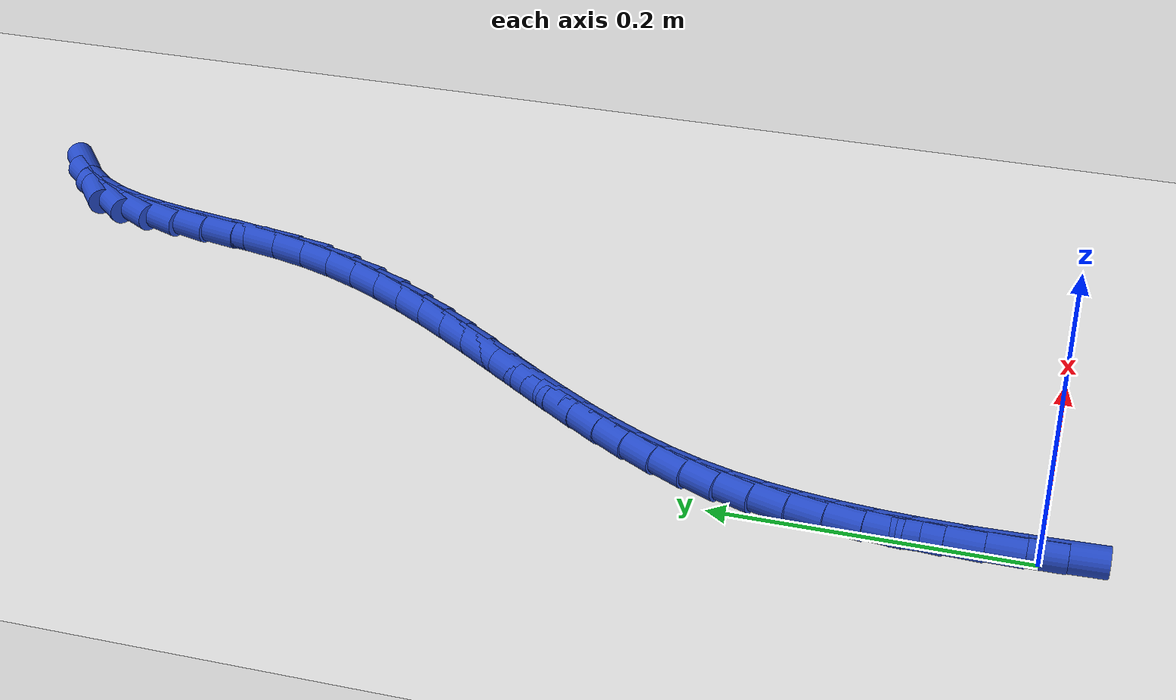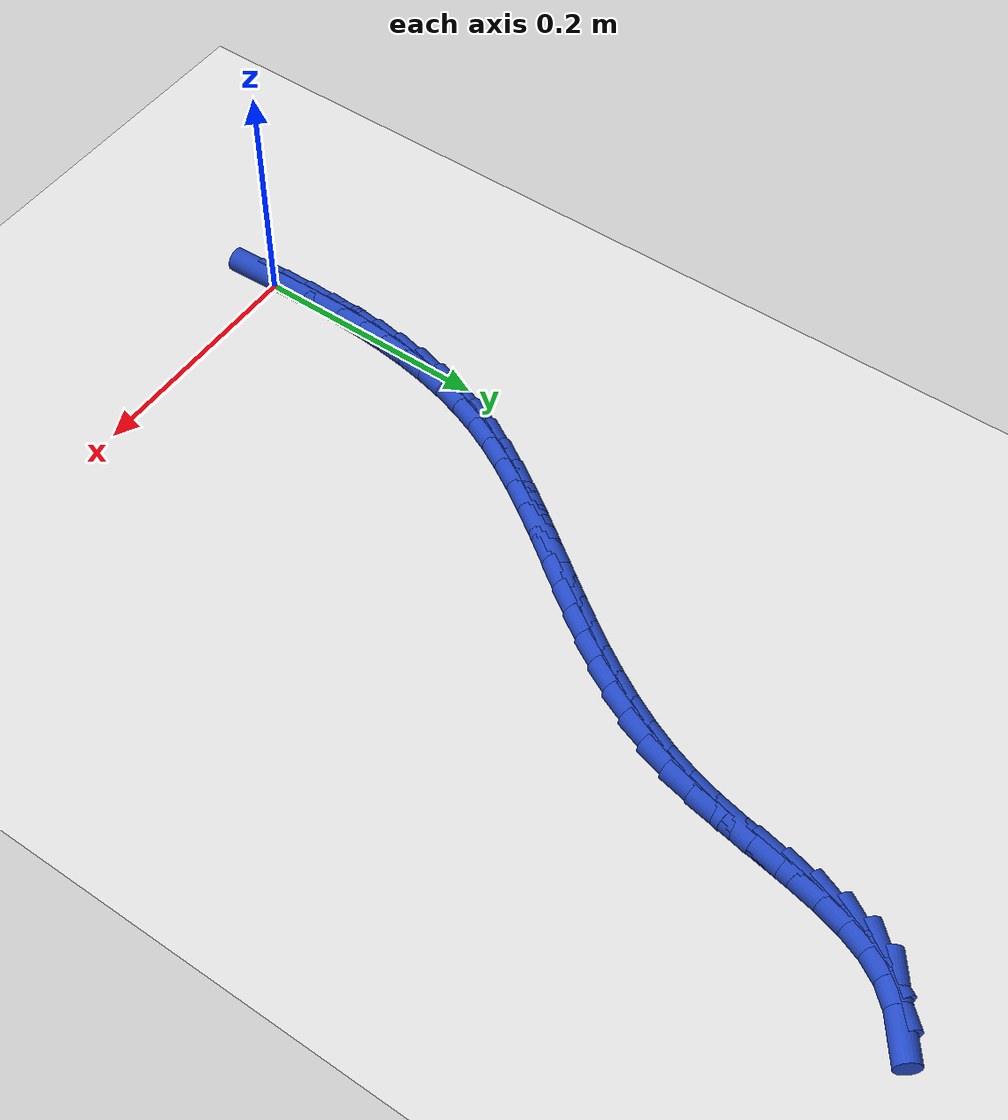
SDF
<sdf version="1.6">
 <world name="default">
  <model name="ground_plane">
   <static>1</static>
   <link name="link">
    <collision name="collision">
     <geometry><plane><normal>0 0 1</normal><size>100 100</size></plane></geometry>
     <surface><friction><ode><mu>100</mu><mu2>50</mu2></ode></friction></surface>
    </collision>
    <visual name="visual">
     <cast_shadows>0</cast_shadows>
     <geometry><plane><normal>0 0 1</normal><size>100 100</size></plane></geometry>
     <material>
      <script><uri>file://media/materials/scripts/gazebo.material</uri><name>Gazebo/WhiteGlow</name></script>
     </material>
    </visual>
   </link>
  </model>
  <model name="line">
   <link name="link_1">
    <pose>-0.0007677014303652256 0.02374301104034909 0.01 0 1.57 -1.5591126122774837</pose>
    <collision name="collision">
     <geometry><cylinder><radius>0.01</radius><length>0.08</length></cylinder></geometry>
    </collision>
    <visual name="visual">
     <material>
      <script><name>Gazebo/Blue</name><uri>file://media/materials/scripts/gazebo.material</uri></script>
     </material>
     <geometry><cylinder><radius>0.01</radius><length>0.08</length></cylinder></geometry>
    </visual>
   </link>
   <link name="link_2">
    <pose>-0.0010465392331661615 0.04760743483264447 0.01 0 1.57 1.5566194134739137</pose>
    <collision name="collision">
     <geometry><cylinder><radius>0.01</radius><length>0.08</length></cylinder></geometry>
    </collision>
    <visual name="visual">
     <material>
      <script><name>Gazebo/Blue</name><uri>file://media/materials/scripts/gazebo.material</uri></script>
     </material>
     <geometry><cylinder><radius>0.01</radius><length>0.08</length></cylinder></geometry>
    </visual>
   </link>
   <link name="link_3">
    <pose>-0.0007078849186716965 0.07149356705283563 0.01 0 1.57 1.5252646155248755</pose>
    <collision name="collision">
     <geometry><cylinder><radius>0.01</radius><length>0.08</length></cylinder></geometry>
    </collision>
    <visual name="visual">
     <material>
      <script><name>Gazebo/Blue</name><uri>file://media/materials/scripts/gazebo.material</uri></script>
     </material>
     <geometry><cylinder><radius>0.01</radius><length>0.08</length></cylinder></geometry>
    </visual>
   </link>
   <link name="link_4">
    <pose>0.00037689000284926266 0.09530170337687202 0.01 0 1.57 1.4880618823220018</pose>
    <collision name="collision">
     <geometry><cylinder><radius>0.01</radius><length>0.08</length></cylinder></geometry>
    </collision>
    <visual name="visual">
     <material>
      <script><name>Gazebo/Blue</name><uri>file://media/materials/scripts/gazebo.material</uri></script>
     </material>
     <geometry><cylinder><radius>0.01</radius><length>0.08</length></cylinder></geometry>
    </visual>
   </link>
   <link name="link_5">
    <pose>0.002336414021127808 0.11893213948070316 0.01 0 1.57 1.4445962079937473</pose>
    <collision name="collision">
     <geometry><cylinder><radius>0.01</radius><length>0.08</length></cylinder></geometry>
    </collision>
    <visual name="visual">
     <material>
      <script><name>Gazebo/Blue</name><uri>file://media/materials/scripts/gazebo.material</uri></script>
     </material>
     <geometry><cylinder><radius>0.01</radius><length>0.08</length></cylinder></geometry>
    </visual>
   </link>
   <link name="link_6">
    <pose>0.005299315625895032 0.1422851710402786 0.01 0 1.57 1.394422207475839</pose>
    <collision name="collision">
     <geometry><cylinder><radius>0.01</radius><length>0.08</length></cylinder></geometry>
    </collision>
    <visual name="visual">
     <material>
      <script><name>Gazebo/Blue</name><uri>file://media/materials/scripts/gazebo.material</uri></script>
     </material>
     <geometry><cylinder><radius>0.01</radius><length>0.08</length></cylinder></geometry>
    </visual>
   </link>
   <link name="link_7">
    <pose>0.009394223306882029 0.16526109373154782 0.01 0 1.57 1.337111553101846</pose>
    <collision name="collision">
     <geometry><cylinder><radius>0.01</radius><length>0.08</length></cylinder></geometry>
    </collision>
    <visual name="visual">
     <material>
      <script><name>Gazebo/Blue</name><uri>file://media/materials/scripts/gazebo.material</uri></script>
     </material>
     <geometry><cylinder><radius>0.01</radius><length>0.08</length></cylinder></geometry>
    </visual>
   </link>
   <link name="link_8">
    <pose>0.014749765553819889 0.18776020323046022 0.01 0 1.57 1.272322714701313</pose>
    <collision name="collision">
     <geometry><cylinder><radius>0.01</radius><length>0.08</length></cylinder></geometry>
    </collision>
    <visual name="visual">
     <material>
      <script><name>Gazebo/Blue</name><uri>file://media/materials/scripts/gazebo.material</uri></script>
     </material>
     <geometry><cylinder><radius>0.01</radius><length>0.08</length></cylinder></geometry>
    </visual>
   </link>
   <link name="link_9">
    <pose>0.0214945708564397 0.20968279521296543 0.01 0 1.57 1.2010960972940572</pose>
    <collision name="collision">
     <geometry><cylinder><radius>0.01</radius><length>0.08</length></cylinder></geometry>
    </collision>
    <visual name="visual">
     <material>
      <script><name>Gazebo/Blue</name><uri>file://media/materials/scripts/gazebo.material</uri></script>
     </material>
     <geometry><cylinder><radius>0.01</radius><length>0.08</length></cylinder></geometry>
    </visual>
   </link>
   <link name="link_10">
    <pose>0.029733590960922738 0.23094377662411106 0.01 0 1.57 1.1340430050891197</pose>
    <collision name="collision">
     <geometry><cylinder><radius>0.01</radius><length>0.08</length></cylinder></geometry>
    </collision>
    <visual name="visual">
     <material>
      <script><name>Gazebo/Blue</name><uri>file://media/materials/scripts/gazebo.material</uri></script>
     </material>
     <geometry><cylinder><radius>0.01</radius><length>0.08</length></cylinder></geometry>
    </visual>
   </link>
   <link name="link_11">
    <pose>0.03936860333262791 0.25158343626666013 0.01 0 1.57 1.0770773024523659</pose>
    <collision name="collision">
     <geometry><cylinder><radius>0.01</radius><length>0.08</length></cylinder></geometry>
    </collision>
    <visual name="visual">
     <material>
      <script><name>Gazebo/Blue</name><uri>file://media/materials/scripts/gazebo.material</uri></script>
     </material>
     <geometry><cylinder><radius>0.01</radius><length>0.08</length></cylinder></geometry>
    </visual>
   </link>
   <link name="link_12">
    <pose>0.05019798939827478 0.2717058701701199 0.01 0 1.57 1.030547085178031</pose>
    <collision name="collision">
     <geometry><cylinder><radius>0.01</radius><length>0.08</length></cylinder></geometry>
    </collision>
    <visual name="visual">
     <material>
      <script><name>Gazebo/Blue</name><uri>file://media/materials/scripts/gazebo.material</uri></script>
     </material>
     <geometry><cylinder><radius>0.01</radius><length>0.08</length></cylinder></geometry>
    </visual>
   </link>
   <link name="link_13">
    <pose>0.06201931173426346 0.2914156796886567 0.01 0 1.57 0.9944334268146502</pose>
    <collision name="collision">
     <geometry><cylinder><radius>0.01</radius><length>0.08</length></cylinder></geometry>
    </collision>
    <visual name="visual">
     <material>
      <script><name>Gazebo/Blue</name><uri>file://media/materials/scripts/gazebo.material</uri></script>
     </material>
     <geometry><cylinder><radius>0.01</radius><length>0.08</length></cylinder></geometry>
    </visual>
   </link>
   <link name="link_14">
    <pose>0.07463013291699404 0.3108174661764372 0.01 0 1.57 0.968544111001394</pose>
    <collision name="collision">
     <geometry><cylinder><radius>0.01</radius><length>0.08</length></cylinder></geometry>
    </collision>
    <visual name="visual">
     <material>
      <script><name>Gazebo/Blue</name><uri>file://media/materials/scripts/gazebo.material</uri></script>
     </material>
     <geometry><cylinder><radius>0.01</radius><length>0.08</length></cylinder></geometry>
    </visual>
   </link>
   <link name="link_15">
    <pose>0.08782801552286672 0.33001583098762793 0.01 0 1.57 0.9526309485638088</pose>
    <collision name="collision">
     <geometry><cylinder><radius>0.01</radius><length>0.08</length></cylinder></geometry>
    </collision>
    <visual name="visual">
     <material>
      <script><name>Gazebo/Blue</name><uri>file://media/materials/scripts/gazebo.material</uri></script>
     </material>
     <geometry><cylinder><radius>0.01</radius><length>0.08</length></cylinder></geometry>
    </visual>
   </link>
   <link name="link_16">
    <pose>0.10141052212828153 0.34911537547639526 0.01 0 1.57 0.9464679651802381</pose>
    <collision name="collision">
     <geometry><cylinder><radius>0.01</radius><length>0.08</length></cylinder></geometry>
    </collision>
    <visual name="visual">
     <material>
      <script><name>Gazebo/Blue</name><uri>file://media/materials/scripts/gazebo.material</uri></script>
     </material>
     <geometry><cylinder><radius>0.01</radius><length>0.08</length></cylinder></geometry>
    </visual>
   </link>
   <link name="link_17">
    <pose>0.11517521530963862 0.36822070099690574 0.01 0 1.57 0.9498945976807526</pose>
    <collision name="collision">
     <geometry><cylinder><radius>0.01</radius><length>0.08</length></cylinder></geometry>
    </collision>
    <visual name="visual">
     <material>
      <script><name>Gazebo/Blue</name><uri>file://media/materials/scripts/gazebo.material</uri></script>
     </material>
     <geometry><cylinder><radius>0.01</radius><length>0.08</length></cylinder></geometry>
    </visual>
   </link>
   <link name="link_18">
    <pose>0.12891965764333815 0.3874364089033259 0.01 0 1.57 0.9628295716358256</pose>
    <collision name="collision">
     <geometry><cylinder><radius>0.01</radius><length>0.08</length></cylinder></geometry>
    </collision>
    <visual name="visual">
     <material>
      <script><name>Gazebo/Blue</name><uri>file://media/materials/scripts/gazebo.material</uri></script>
     </material>
     <geometry><cylinder><radius>0.01</radius><length>0.08</length></cylinder></geometry>
    </visual>
   </link>
   <link name="link_19">
    <pose>0.14244141170578012 0.4068671005498222 0.01 0 1.57 0.9852592882658145</pose>
    <collision name="collision">
     <geometry><cylinder><radius>0.01</radius><length>0.08</length></cylinder></geometry>
    </collision>
    <visual name="visual">
     <material>
      <script><name>Gazebo/Blue</name><uri>file://media/materials/scripts/gazebo.material</uri></script>
     </material>
     <geometry><cylinder><radius>0.01</radius><length>0.08</length></cylinder></geometry>
    </visual>
   </link>
   <link name="link_20">
    <pose>0.15553804007336486 0.42661737729056126 0.01 0 1.57 1.0172018359766788</pose>
    <collision name="collision">
     <geometry><cylinder><radius>0.01</radius><length>0.08</length></cylinder></geometry>
    </collision>
    <visual name="visual">
     <material>
      <script><name>Gazebo/Blue</name><uri>file://media/materials/scripts/gazebo.material</uri></script>
     </material>
     <geometry><cylinder><radius>0.01</radius><length>0.08</length></cylinder></geometry>
    </visual>
   </link>
   <link name="link_21">
    <pose>0.16800710532249227 0.4467918404797094 0.01 0 1.57 1.0586459094893708</pose>
    <collision name="collision">
     <geometry><cylinder><radius>0.01</radius><length>0.08</length></cylinder></geometry>
    </collision>
    <visual name="visual">
     <material>
      <script><name>Gazebo/Blue</name><uri>file://media/materials/scripts/gazebo.material</uri></script>
     </material>
     <geometry><cylinder><radius>0.01</radius><length>0.08</length></cylinder></geometry>
    </visual>
   </link>
   <link name="link_22">
    <pose>0.1796461700295625 0.4674950914714331 0.01 0 1.57 1.1094645334912947</pose>
    <collision name="collision">
     <geometry><cylinder><radius>0.01</radius><length>0.08</length></cylinder></geometry>
    </collision>
    <visual name="visual">
     <material>
      <script><name>Gazebo/Blue</name><uri>file://media/materials/scripts/gazebo.material</uri></script>
     </material>
     <geometry><cylinder><radius>0.01</radius><length>0.08</length></cylinder></geometry>
    </visual>
   </link>
   <link name="link_23">
    <pose>0.19025279677097579 0.488831731619899 0.01 0 1.57 1.1693081653867587</pose>
    <collision name="collision">
     <geometry><cylinder><radius>0.01</radius><length>0.08</length></cylinder></geometry>
    </collision>
    <visual name="visual">
     <material>
      <script><name>Gazebo/Blue</name><uri>file://media/materials/scripts/gazebo.material</uri></script>
     </material>
     <geometry><cylinder><radius>0.01</radius><length>0.08</length></cylinder></geometry>
    </visual>
   </link>
   <link name="link_24">
    <pose>0.19962454812313224 0.5109063622792738 0.01 0 1.57 1.237491480410047</pose>
    <collision name="collision">
     <geometry><cylinder><radius>0.01</radius><length>0.08</length></cylinder></geometry>
    </collision>
    <visual name="visual">
     <material>
      <script><name>Gazebo/Blue</name><uri>file://media/materials/scripts/gazebo.material</uri></script>
     </material>
     <geometry><cylinder><radius>0.01</radius><length>0.08</length></cylinder></geometry>
    </visual>
   </link>
   <link name="link_25">
    <pose>0.2075589866624319 0.5338235848037236 0.01 0 1.57 1.3121350676280372</pose>
    <collision name="collision">
     <geometry><cylinder><radius>0.01</radius><length>0.08</length></cylinder></geometry>
    </collision>
    <visual name="visual">
     <material>
      <script><name>Gazebo/Blue</name><uri>file://media/materials/scripts/gazebo.material</uri></script>
     </material>
     <geometry><cylinder><radius>0.01</radius><length>0.08</length></cylinder></geometry>
    </visual>
   </link>
   <link name="link_26">
    <pose>0.21387014389067138 0.557676305284221 0.01 0 1.57 1.3735472927225385</pose>
    <collision name="collision">
     <geometry><cylinder><radius>0.01</radius><length>0.08</length></cylinder></geometry>
    </collision>
    <visual name="visual">
     <material>
      <script><name>Gazebo/Blue</name><uri>file://media/materials/scripts/gazebo.material</uri></script>
     </material>
     <geometry><cylinder><radius>0.01</radius><length>0.08</length></cylinder></geometry>
    </visual>
   </link>
   <link name="link_27">
    <pose>0.21878409946325075 0.582264817422709 0.01 0 1.57 1.4041628358587832</pose>
    <collision name="collision">
     <geometry><cylinder><radius>0.01</radius><length>0.08</length></cylinder></geometry>
    </collision>
    <visual name="visual">
     <material>
      <script><name>Gazebo/Blue</name><uri>file://media/materials/scripts/gazebo.material</uri></script>
     </material>
     <geometry><cylinder><radius>0.01</radius><length>0.08</length></cylinder></geometry>
    </visual>
   </link>
   <link name="link_28">
    <pose>0.222958354186704 0.6070830449675048 0.01 0 1.57 1.4046760108720817</pose>
    <collision name="collision">
     <geometry><cylinder><radius>0.01</radius><length>0.08</length></cylinder></geometry>
    </collision>
    <visual name="visual">
     <material>
      <script><name>Gazebo/Blue</name><uri>file://media/materials/scripts/gazebo.material</uri></script>
     </material>
     <geometry><cylinder><radius>0.01</radius><length>0.08</length></cylinder></geometry>
    </visual>
   </link>
   <link name="link_29">
    <pose>0.22707075495657741 0.6316104630699318 0.01 0 1.57 1.3740018208485782</pose>
    <collision name="collision">
     <geometry><cylinder><radius>0.01</radius><length>0.08</length></cylinder></geometry>
    </collision>
    <visual name="visual">
     <material>
      <script><name>Gazebo/Blue</name><uri>file://media/materials/scripts/gazebo.material</uri></script>
     </material>
     <geometry><cylinder><radius>0.01</radius><length>0.08</length></cylinder></geometry>
    </visual>
   </link>
   <link name="link_30">
    <pose>0.23179914866841714 0.6553265468813139 0.01 0 1.57 1.3079802400317275</pose>
    <collision name="collision">
     <geometry><cylinder><radius>0.01</radius><length>0.08</length></cylinder></geometry>
    </collision>
    <visual name="visual">
     <material>
      <script><name>Gazebo/Blue</name><uri>file://media/materials/scripts/gazebo.material</uri></script>
     </material>
     <geometry><cylinder><radius>0.01</radius><length>0.08</length></cylinder></geometry>
    </visual>
   </link>
   <link name="link_31">
    <pose>0.23782138221776936 0.6777107715529743 0.01 0 1.57 1.1995109880548842</pose>
    <collision name="collision">
     <geometry><cylinder><radius>0.01</radius><length>0.08</length></cylinder></geometry>
    </collision>
    <visual name="visual">
     <material>
      <script><name>Gazebo/Blue</name><uri>file://media/materials/scripts/gazebo.material</uri></script>
     </material>
     <geometry><cylinder><radius>0.01</radius><length>0.08</length></cylinder></geometry>
    </visual>
   </link>
   <link name="link_32">
    <pose>0.2458153025001804 0.6982426122362374 0.01 0 1.57 1.0406394588289851</pose>
    <collision name="collision">
     <geometry><cylinder><radius>0.01</radius><length>0.08</length></cylinder></geometry>
    </collision>
    <visual name="visual">
     <material>
      <script><name>Gazebo/Blue</name><uri>file://media/materials/scripts/gazebo.material</uri></script>
     </material>
     <geometry><cylinder><radius>0.01</radius><length>0.08</length></cylinder></geometry>
    </visual>
   </link>
   <link name="link_33">
    <pose>0.2564587564111964 0.7164015440824264 0.01 0 1.57 0.8342582517688095</pose>
    <collision name="collision">
     <geometry><cylinder><radius>0.01</radius><length>0.08</length></cylinder></geometry>
    </collision>
    <visual name="visual">
     <material>
      <script><name>Gazebo/Blue</name><uri>file://media/materials/scripts/gazebo.material</uri></script>
     </material>
     <geometry><cylinder><radius>0.01</radius><length>0.08</length></cylinder></geometry>
    </visual>
   </link>
   <link name="link_34">
    <pose>0.2703579488856261 0.7317299364286659 0.01 0 1.57 0.6416369942503576</pose>
    <collision name="collision">
     <geometry><cylinder><radius>0.01</radius><length>0.08</length></cylinder></geometry>
    </collision>
    <visual name="visual">
     <material>
      <script><name>Gazebo/Blue</name><uri>file://media/materials/scripts/gazebo.material</uri></script>
     </material>
     <geometry><cylinder><radius>0.01</radius><length>0.08</length></cylinder></geometry>
    </visual>
   </link>
   <link name="link_290">
    <pose>1.9244588561617704e-17 1.3877787807814457e-17 0.01 0 1.57 -1.5376573275929277</pose>
    <collision name="collision">
     <geometry><cylinder><radius>0.01</radius><length>0.08</length></cylinder></geometry>
    </collision>
    <visual name="visual">
     <material>
      <script><name>Gazebo/Blue</name><uri>file://media/materials/scripts/gazebo.material</uri></script>
     </material>
     <geometry><cylinder><radius>0.01</radius><length>0.08</length></cylinder></geometry>
    </visual>
   </link>
   <link name="link_291">
    <pose>-0.0007879006050127452 0.023766926596485934 0.01 0 1.57 -1.5533116344580988</pose>
    <collision name="collision">
     <geometry><cylinder><radius>0.01</radius><length>0.08</length></cylinder></geometry>
    </collision>
    <visual name="visual">
     <material>
      <script><name>Gazebo/Blue</name><uri>file://media/materials/scripts/gazebo.material</uri></script>
     </material>
     <geometry><cylinder><radius>0.01</radius><length>0.08</length></cylinder></geometry>
    </visual>
   </link>
   <link name="link_292">
    <pose>-0.0012081326303464684 0.04779875928174489 0.01 0 1.57 -1.545526309812232</pose>
    <collision name="collision">
     <geometry><cylinder><radius>0.01</radius><length>0.08</length></cylinder></geometry>
    </collision>
    <visual name="visual">
     <material>
      <script><name>Gazebo/Blue</name><uri>file://media/materials/scripts/gazebo.material</uri></script>
     </material>
     <geometry><cylinder><radius>0.01</radius><length>0.08</length></cylinder></geometry>
    </visual>
   </link>
  </model>
 </world>
</sdf>
